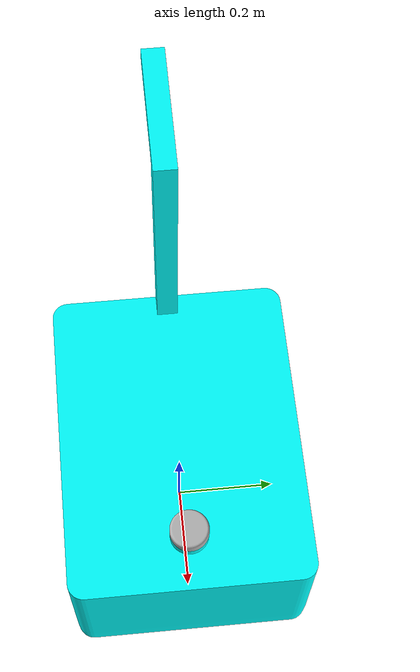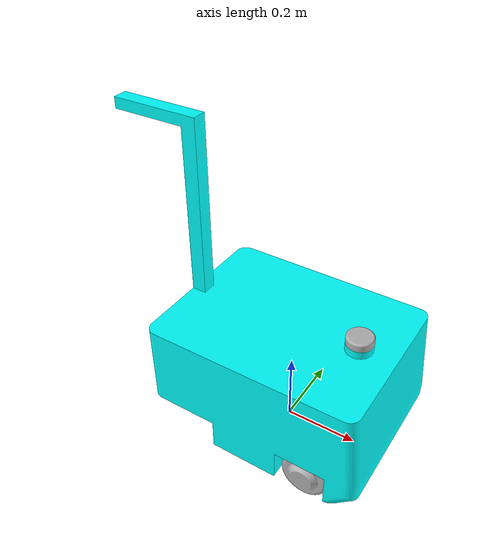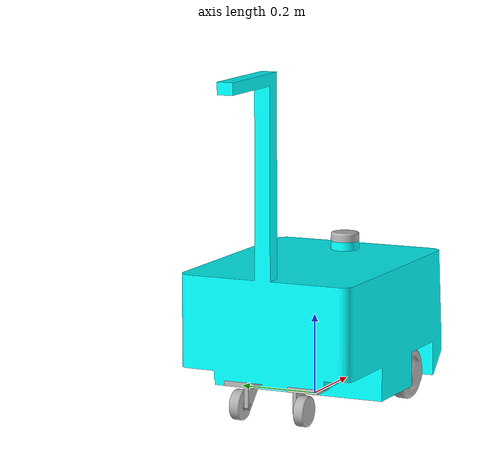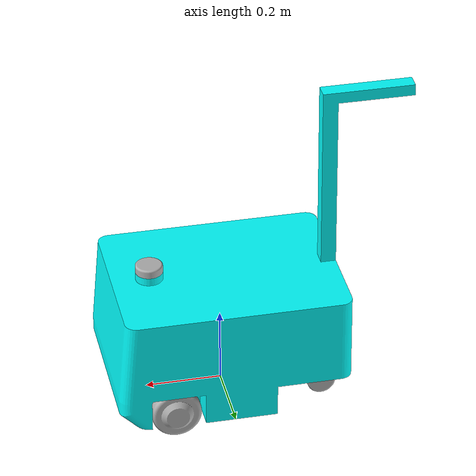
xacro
<?xml version="1.0" ?>
<robot name="VICA" xmlns:xacro="http://www.ros.org/wiki/xacro">

<!-- Keep includes relative so this file expands before the package is installed. -->
<xacro:include filename="materials.xacro" />

<!-- Geometry exported from CAD is expressed in metres through a 0.001 mesh scale. -->
<xacro:property name="body_center_z" value="0.0675" />
<xacro:property name="base_link_height" value="0.19" />

<!-- Sensor origins are relative to base_link. -->
<xacro:property name="laser_x" value="0.185" />
<xacro:property name="laser_y" value="0.0" />
<xacro:property name="laser_z" value="0.19" />
<xacro:property name="camera_x" value="0.28683" />
<xacro:property name="camera_y" value="0.0" />
<xacro:property name="camera_z" value="0.13" />

<!-- Conservative import defaults; tune these against the physical platform. -->
<xacro:property name="wheel_effort" value="100.0" />
<xacro:property name="wheel_velocity" value="20.0" />
<xacro:property name="wheel_damping" value="0.1" />
<xacro:property name="caster_effort" value="10.0" />
<xacro:property name="caster_velocity" value="20.0" />
<xacro:property name="caster_damping" value="0.05" />

<link name="base_footprint"/>

<joint name="base_footprint_joint" type="fixed">
  <origin xyz="0 0 ${base_link_height}" rpy="0 0 0"/>
  <parent link="base_footprint"/>
  <child link="base_link"/>
</joint>

<link name="base_link">
  <inertial>
    <origin xyz="0.004031215194176557 3.002726997808124e-17 0.00856562657816282" rpy="0 0 0"/>
    <mass value="90.84709962539795"/>
    <inertia ixx="2.402108" iyy="3.622523" izz="4.166828" ixy="0.0" iyz="-0.0" ixz="0.343284"/>
  </inertial>
  <visual>
    <origin xyz="0 0 -${body_center_z}" rpy="0 0 0"/>
    <geometry>
      <mesh filename="package://vica_description/meshes/base_link.stl" scale="0.001 0.001 0.001"/>
    </geometry>
    <material name="body_blue"/>
  </visual>
  <collision>
    <origin xyz="0 0 -${body_center_z}" rpy="0 0 0"/>
    <geometry>
      <mesh filename="package://vica_description/meshes/base_link.stl" scale="0.001 0.001 0.001"/>
    </geometry>
  </collision>
</link>

<link name="left_wheel_1">
  <inertial>
    <origin xyz="2.0539125955565396e-15 0.03668765550201605 0.0" rpy="0 0 0"/>
    <mass value="0.5663250710944822"/>
    <inertia ixx="0.000634" iyy="0.001025" izz="0.000634" ixy="0.0" iyz="-0.0" ixz="0.0"/>
  </inertial>
  <visual>
    <origin xyz="-0.154 -0.1465 0.084" rpy="0 0 0"/>
    <geometry>
      <mesh filename="package://vica_description/meshes/left_wheel_1.stl" scale="0.001 0.001 0.001"/>
    </geometry>
    <material name="silver"/>
  </visual>
  <collision>
    <origin xyz="-0.154 -0.1465 0.084" rpy="0 0 0"/>
    <geometry>
      <mesh filename="package://vica_description/meshes/left_wheel_1.stl" scale="0.001 0.001 0.001"/>
    </geometry>
  </collision>
</link>

<link name="right_wheel_1">
  <inertial>
    <origin xyz="-0.00046568184733652984 -0.03568765550201608 0.0009570426748952837" rpy="0 0 0"/>
    <mass value="0.5663250710944814"/>
    <inertia ixx="0.000634" iyy="0.001025" izz="0.000634" ixy="0.0" iyz="0.0" ixz="-0.0"/>
  </inertial>
  <visual>
    <origin xyz="-0.154 0.1465 0.084" rpy="0 0 0"/>
    <geometry>
      <mesh filename="package://vica_description/meshes/right_wheel_1.stl" scale="0.001 0.001 0.001"/>
    </geometry>
    <material name="silver"/>
  </visual>
  <collision>
    <origin xyz="-0.154 0.1465 0.084" rpy="0 0 0"/>
    <geometry>
      <mesh filename="package://vica_description/meshes/right_wheel_1.stl" scale="0.001 0.001 0.001"/>
    </geometry>
  </collision>
</link>

<link name="front_left_caster_wheel_1">
  <inertial>
    <origin xyz="-1.6653345369377348e-15 0.01574568542726719 0.0" rpy="0 0 0"/>
    <mass value="0.11451893837110633"/>
    <inertia ixx="4.7e-05" iyy="7.8e-05" izz="4.7e-05" ixy="-0.0" iyz="0.0" ixz="0.0"/>
  </inertial>
  <visual>
    <origin xyz="0.252 -0.0695 0.107" rpy="0 0 0"/>
    <geometry>
      <mesh filename="package://vica_description/meshes/front_left_caster_wheel_1.stl" scale="0.001 0.001 0.001"/>
    </geometry>
    <material name="silver"/>
  </visual>
  <collision>
    <origin xyz="0.252 -0.0695 0.107" rpy="0 0 0"/>
    <geometry>
      <mesh filename="package://vica_description/meshes/front_left_caster_wheel_1.stl" scale="0.001 0.001 0.001"/>
    </geometry>
  </collision>
</link>

<link name="front_right_caster_wheel_1">
  <inertial>
    <origin xyz="5.162537064506978e-15 -0.015745685427267203 0.0" rpy="0 0 0"/>
    <mass value="0.11451893837110629"/>
    <inertia ixx="4.7e-05" iyy="7.8e-05" izz="4.7e-05" ixy="-0.0" iyz="0.0" ixz="-0.0"/>
  </inertial>
  <visual>
    <origin xyz="0.252 0.0695 0.107" rpy="0 0 0"/>
    <geometry>
      <mesh filename="package://vica_description/meshes/front_right_caster_wheel_1.stl" scale="0.001 0.001 0.001"/>
    </geometry>
    <material name="silver"/>
  </visual>
  <collision>
    <origin xyz="0.252 0.0695 0.107" rpy="0 0 0"/>
    <geometry>
      <mesh filename="package://vica_description/meshes/front_right_caster_wheel_1.stl" scale="0.001 0.001 0.001"/>
    </geometry>
  </collision>
</link>

<link name="front_right_caster_steer_1">
  <inertial>
    <origin xyz="-0.004080894044594496 0.0037449849629774684 -0.017666622102230287" rpy="0 0 0"/>
    <mass value="0.9536308497491053"/>
    <inertia ixx="0.000637" iyy="0.000626" izz="0.000908" ixy="4e-05" iyz="8.5e-05" ixz="-8.2e-05"/>
  </inertial>
  <visual>
    <origin xyz="0.222 0.0845 0.0415" rpy="0 0 0"/>
    <geometry>
      <mesh filename="package://vica_description/meshes/front_right_caster_steer_1.stl" scale="0.001 0.001 0.001"/>
    </geometry>
    <material name="silver"/>
  </visual>
  <collision>
    <origin xyz="0.222 0.0845 0.0415" rpy="0 0 0"/>
    <geometry>
      <mesh filename="package://vica_description/meshes/front_right_caster_steer_1.stl" scale="0.001 0.001 0.001"/>
    </geometry>
  </collision>
</link>

<link name="front_left_caster_steer_1">
  <inertial>
    <origin xyz="-0.004080894044594496 -0.003744984962977496 -0.017666622102230287" rpy="0 0 0"/>
    <mass value="0.9536308497491053"/>
    <inertia ixx="0.000637" iyy="0.000626" izz="0.000908" ixy="-4e-05" iyz="-8.5e-05" ixz="-8.2e-05"/>
  </inertial>
  <visual>
    <origin xyz="0.222 -0.0845 0.0415" rpy="0 0 0"/>
    <geometry>
      <mesh filename="package://vica_description/meshes/front_left_caster_steer_1.stl" scale="0.001 0.001 0.001"/>
    </geometry>
    <material name="silver"/>
  </visual>
  <collision>
    <origin xyz="0.222 -0.0845 0.0415" rpy="0 0 0"/>
    <geometry>
      <mesh filename="package://vica_description/meshes/front_left_caster_steer_1.stl" scale="0.001 0.001 0.001"/>
    </geometry>
  </collision>
</link>

<link name="laser_frame">
  <inertial>
    <origin xyz="0.0 0.0 0.010868727234877334" rpy="0 0 0"/>
    <mass value="0.16353480730457975"/>
    <inertia ixx="5.9e-05" iyy="5.9e-05" izz="0.000105" ixy="0.0" iyz="-0.0" ixz="-0.0"/>
  </inertial>
  <visual>
    <origin xyz="-0.185 -0.0 -0.258" rpy="0 0 0"/>
    <geometry>
      <mesh filename="package://vica_description/meshes/lidar_1.stl" scale="0.001 0.001 0.001"/>
    </geometry>
    <material name="silver"/>
  </visual>
  <collision>
    <origin xyz="-0.185 -0.0 -0.258" rpy="0 0 0"/>
    <geometry>
      <mesh filename="package://vica_description/meshes/lidar_1.stl" scale="0.001 0.001 0.001"/>
    </geometry>
  </collision>
</link>

<link name="camera_link"/>
<link name="camera_optical_frame"/>

<joint name="left_wheel_joint" type="continuous">
  <origin xyz="0.154 0.1465 -0.1515" rpy="0 0 0"/>
  <parent link="base_link"/>
  <child link="left_wheel_1"/>
  <axis xyz="0.0 1.0 0.0"/>
  <dynamics damping="${wheel_damping}" friction="0.0"/>
  <limit effort="${wheel_effort}" velocity="${wheel_velocity}"/>
</joint>

<joint name="right_wheel_joint" type="continuous">
  <origin xyz="0.154 -0.1465 -0.1515" rpy="0 0 0"/>
  <parent link="base_link"/>
  <child link="right_wheel_1"/>
  <axis xyz="0.0 1.0 0.0"/>
  <dynamics damping="${wheel_damping}" friction="0.0"/>
  <limit effort="${wheel_effort}" velocity="${wheel_velocity}"/>
</joint>

<joint name="front_left_caster_wheel_joint" type="continuous">
  <origin xyz="-0.03 -0.015 -0.0655" rpy="0 0 0"/>
  <parent link="front_left_caster_steer_1"/>
  <child link="front_left_caster_wheel_1"/>
  <axis xyz="0.0 -1.0 0.0"/>
  <dynamics damping="${caster_damping}" friction="0.0"/>
  <limit effort="${caster_effort}" velocity="${caster_velocity}"/>
</joint>

<joint name="front_right_caster_wheel_joint" type="continuous">
  <origin xyz="-0.03 0.015 -0.0655" rpy="0 0 0"/>
  <parent link="front_right_caster_steer_1"/>
  <child link="front_right_caster_wheel_1"/>
  <axis xyz="0.0 -1.0 0.0"/>
  <dynamics damping="${caster_damping}" friction="0.0"/>
  <limit effort="${caster_effort}" velocity="${caster_velocity}"/>
</joint>

<joint name="front_right_caster_steer_joint" type="continuous">
  <origin xyz="-0.222 -0.0845 -0.109" rpy="0 0 0"/>
  <parent link="base_link"/>
  <child link="front_right_caster_steer_1"/>
  <axis xyz="0.0 0.0 -1.0"/>
  <dynamics damping="${caster_damping}" friction="0.0"/>
  <limit effort="${caster_effort}" velocity="${caster_velocity}"/>
</joint>

<joint name="front_left_caster_steer_joint" type="continuous">
  <origin xyz="-0.222 0.0845 -0.109" rpy="0 0 0"/>
  <parent link="base_link"/>
  <child link="front_left_caster_steer_1"/>
  <axis xyz="0.0 0.0 -1.0"/>
  <dynamics damping="${caster_damping}" friction="0.0"/>
  <limit effort="${caster_effort}" velocity="${caster_velocity}"/>
</joint>

<!-- Sensor positions are expressed relative to the body-centered base_link. -->
<joint name="laser_joint" type="fixed">
  <origin xyz="${laser_x} ${laser_y} ${laser_z}" rpy="0 0 0"/>
  <parent link="base_link"/>
  <child link="laser_frame"/>
</joint>

<joint name="camera_joint" type="fixed">
  <origin xyz="${camera_x} ${camera_y} ${camera_z}" rpy="0 0 0"/>
  <parent link="base_link"/>
  <child link="camera_link"/>
</joint>

<!-- REP-103 optical convention: +Z forward, +X right, +Y down. -->
<joint name="camera_optical_joint" type="fixed">
  <origin xyz="0 0 0" rpy="-${pi / 2} 0 -${pi / 2}"/>
  <parent link="camera_link"/>
  <child link="camera_optical_frame"/>
</joint>

</robot>

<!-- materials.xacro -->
<robot name="VICA" xmlns:xacro="http://www.ros.org/wiki/xacro" >

<material name="body_blue">
  <color rgba="0 1.0 1.0 1.0"/>
</material>

<material name="silver">
  <color rgba="0.70 0.70 0.70 1.0"/>
</material>

<material name="camera_black">
  <color rgba="0.08 0.08 0.08 1.0"/>
</material>

</robot>
